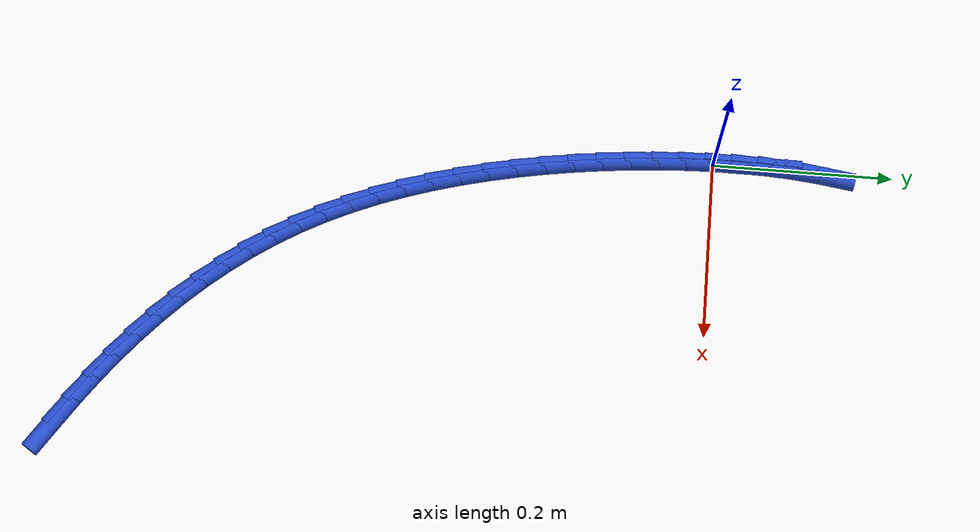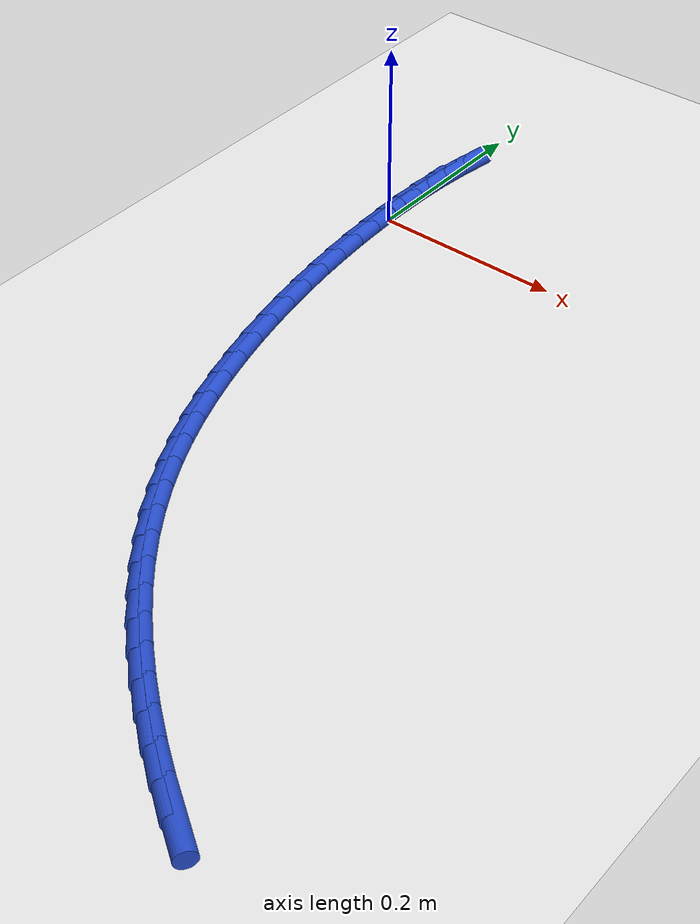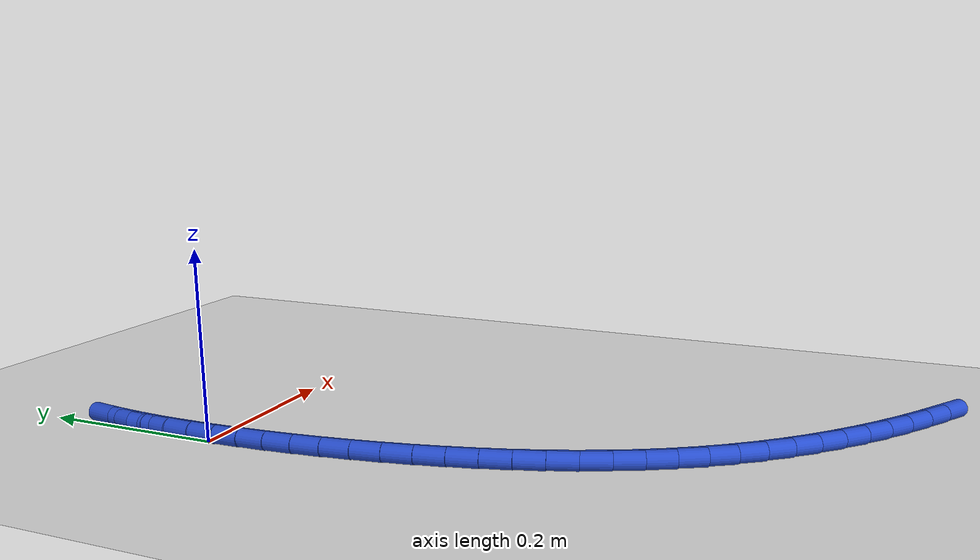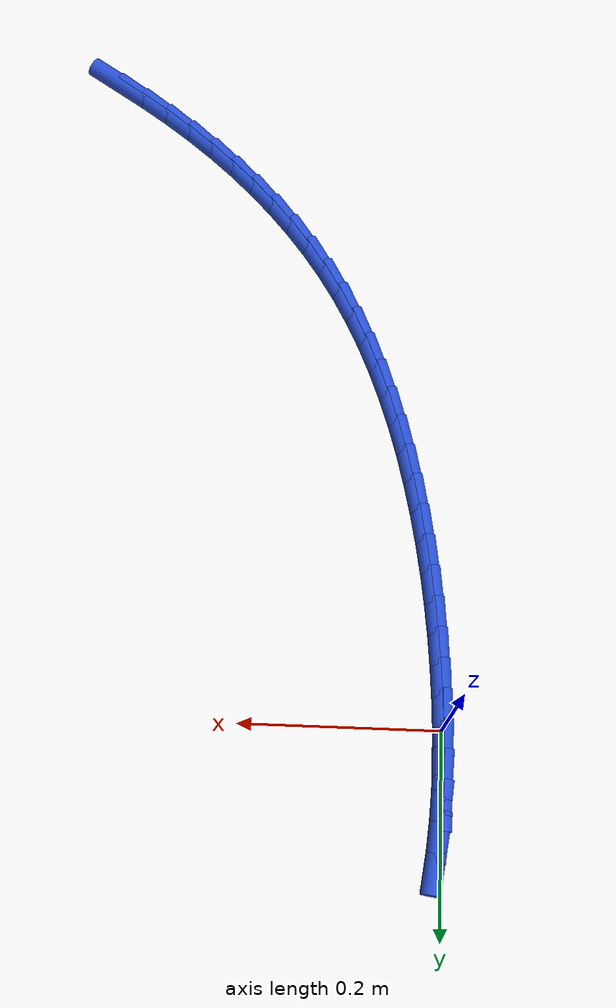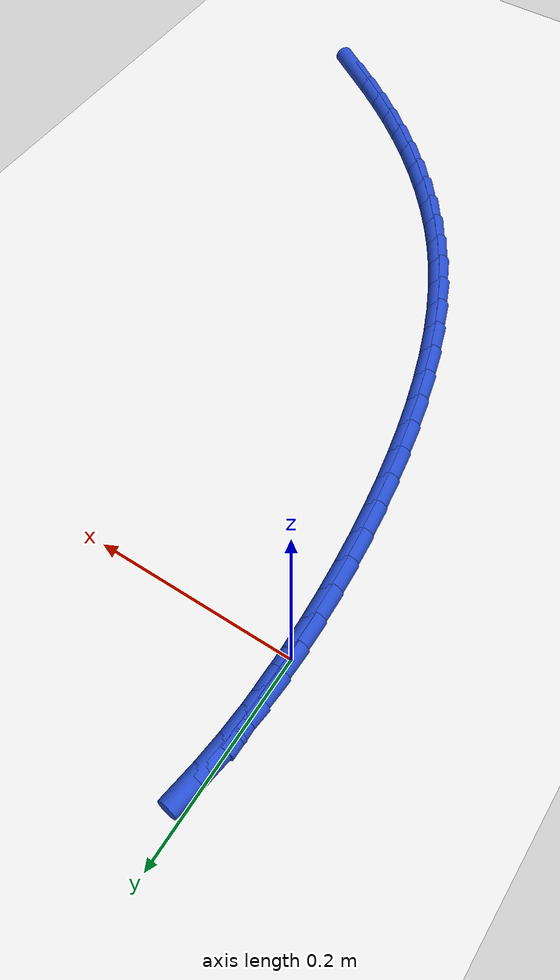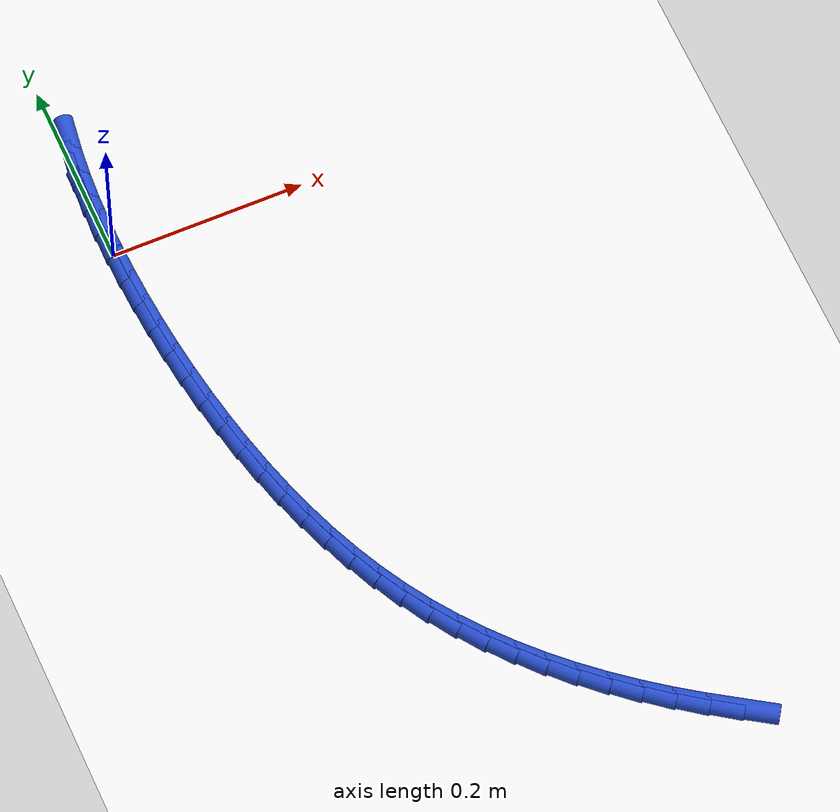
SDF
<sdf version="1.6">
 <world name="default">
  <model name="ground_plane">
   <static>1</static>
   <link name="link">
    <collision name="collision">
     <geometry><plane><normal>0 0 1</normal><size>100 100</size></plane></geometry>
     <surface><friction><ode><mu>100</mu><mu2>50</mu2></ode></friction></surface>
    </collision>
    <visual name="visual">
     <cast_shadows>0</cast_shadows>
     <geometry><plane><normal>0 0 1</normal><size>100 100</size></plane></geometry>
     <material>
      <script><uri>file://media/materials/scripts/gazebo.material</uri><name>Gazebo/WhiteGlow</name></script>
     </material>
    </visual>
   </link>
  </model>
  <model name="line">
   <link name="link_0">
    <pose>-4.119968255444917e-18 -2.0816681711721685e-17 0.01 0 1.57 -1.562052817737333</pose>
    <collision name="collision">
     <geometry><cylinder><radius>0.01</radius><length>0.08</length></cylinder></geometry>
    </collision>
    <visual name="visual">
     <material>
      <script><name>Gazebo/Blue</name><uri>file://media/materials/scripts/gazebo.material</uri></script>
     </material>
     <geometry><cylinder><radius>0.01</radius><length>0.08</length></cylinder></geometry>
    </visual>
   </link>
   <link name="link_1">
    <pose>-0.00025625882855209964 0.02930771805601609 0.01 0 1.57 1.5480821553851039</pose>
    <collision name="collision">
     <geometry><cylinder><radius>0.01</radius><length>0.08</length></cylinder></geometry>
    </collision>
    <visual name="visual">
     <material>
      <script><name>Gazebo/Blue</name><uri>file://media/materials/scripts/gazebo.material</uri></script>
     </material>
     <geometry><cylinder><radius>0.01</radius><length>0.08</length></cylinder></geometry>
    </visual>
   </link>
   <link name="link_2">
    <pose>0.0004032373809765437 0.05833729500970832 0.01 0 1.57 1.5113289155813903</pose>
    <collision name="collision">
     <geometry><cylinder><radius>0.01</radius><length>0.08</length></cylinder></geometry>
    </collision>
    <visual name="visual">
     <material>
      <script><name>Gazebo/Blue</name><uri>file://media/materials/scripts/gazebo.material</uri></script>
     </material>
     <geometry><cylinder><radius>0.01</radius><length>0.08</length></cylinder></geometry>
    </visual>
   </link>
   <link name="link_3">
    <pose>0.0021424498949278595 0.08754929242037619 0.01 0 1.57 1.4712141610465388</pose>
    <collision name="collision">
     <geometry><cylinder><radius>0.01</radius><length>0.08</length></cylinder></geometry>
    </collision>
    <visual name="visual">
     <material>
      <script><name>Gazebo/Blue</name><uri>file://media/materials/scripts/gazebo.material</uri></script>
     </material>
     <geometry><cylinder><radius>0.01</radius><length>0.08</length></cylinder></geometry>
    </visual>
   </link>
   <link name="link_4">
    <pose>0.005125339979643774 0.11740427184731916 0.01 0 1.57 1.4299160984193249</pose>
    <collision name="collision">
     <geometry><cylinder><radius>0.01</radius><length>0.08</length></cylinder></geometry>
    </collision>
    <visual name="visual">
     <material>
      <script><name>Gazebo/Blue</name><uri>file://media/materials/scripts/gazebo.material</uri></script>
     </material>
     <geometry><cylinder><radius>0.01</radius><length>0.08</length></cylinder></geometry>
    </visual>
   </link>
   <link name="link_244">
    <pose>0.35213860571533345 -0.6923645273068532 0.01 0 1.57 -0.5785103591377788</pose>
    <collision name="collision">
     <geometry><cylinder><radius>0.01</radius><length>0.08</length></cylinder></geometry>
    </collision>
    <visual name="visual">
     <material>
      <script><name>Gazebo/Blue</name><uri>file://media/materials/scripts/gazebo.material</uri></script>
     </material>
     <geometry><cylinder><radius>0.01</radius><length>0.08</length></cylinder></geometry>
    </visual>
   </link>
   <link name="link_245">
    <pose>0.32452816041802607 -0.67433376179134 0.01 0 1.57 -0.6116766444370919</pose>
    <collision name="collision">
     <geometry><cylinder><radius>0.01</radius><length>0.08</length></cylinder></geometry>
    </collision>
    <visual name="visual">
     <material>
      <script><name>Gazebo/Blue</name><uri>file://media/materials/scripts/gazebo.material</uri></script>
     </material>
     <geometry><cylinder><radius>0.01</radius><length>0.08</length></cylinder></geometry>
    </visual>
   </link>
   <link name="link_246">
    <pose>0.2979065844626225 -0.655660923683847 0.01 0 1.57 -0.6472858655691797</pose>
    <collision name="collision">
     <geometry><cylinder><radius>0.01</radius><length>0.08</length></cylinder></geometry>
    </collision>
    <visual name="visual">
     <material>
      <script><name>Gazebo/Blue</name><uri>file://media/materials/scripts/gazebo.material</uri></script>
     </material>
     <geometry><cylinder><radius>0.01</radius><length>0.08</length></cylinder></geometry>
    </visual>
   </link>
   <link name="link_247">
    <pose>0.27231046668513215 -0.636312036421596 0.01 0 1.57 -0.6853773964990545</pose>
    <collision name="collision">
     <geometry><cylinder><radius>0.01</radius><length>0.08</length></cylinder></geometry>
    </collision>
    <visual name="visual">
     <material>
      <script><name>Gazebo/Blue</name><uri>file://media/materials/scripts/gazebo.material</uri></script>
     </material>
     <geometry><cylinder><radius>0.01</radius><length>0.08</length></cylinder></geometry>
    </visual>
   </link>
   <link name="link_248">
    <pose>0.24777639592156647 -0.6162531234418113 0.01 0 1.57 -0.7259606202073509</pose>
    <collision name="collision">
     <geometry><cylinder><radius>0.01</radius><length>0.08</length></cylinder></geometry>
    </collision>
    <visual name="visual">
     <material>
      <script><name>Gazebo/Blue</name><uri>file://media/materials/scripts/gazebo.material</uri></script>
     </material>
     <geometry><cylinder><radius>0.01</radius><length>0.08</length></cylinder></geometry>
    </visual>
   </link>
   <link name="link_249">
    <pose>0.22434096100793433 -0.5954502081817143 0.01 0 1.57 -0.769007242598822</pose>
    <collision name="collision">
     <geometry><cylinder><radius>0.01</radius><length>0.08</length></cylinder></geometry>
    </collision>
    <visual name="visual">
     <material>
      <script><name>Gazebo/Blue</name><uri>file://media/materials/scripts/gazebo.material</uri></script>
     </material>
     <geometry><cylinder><radius>0.01</radius><length>0.08</length></cylinder></geometry>
    </visual>
   </link>
   <link name="link_250">
    <pose>0.20204075078024716 -0.573869314078529 0.01 0 1.57 -0.8144436828011368</pose>
    <collision name="collision">
     <geometry><cylinder><radius>0.01</radius><length>0.08</length></cylinder></geometry>
    </collision>
    <visual name="visual">
     <material>
      <script><name>Gazebo/Blue</name><uri>file://media/materials/scripts/gazebo.material</uri></script>
     </material>
     <geometry><cylinder><radius>0.01</radius><length>0.08</length></cylinder></geometry>
    </visual>
   </link>
   <link name="link_251">
    <pose>0.18091235407451373 -0.551476464569477 0.01 0 1.57 -0.8621442864571782</pose>
    <collision name="collision">
     <geometry><cylinder><radius>0.01</radius><length>0.08</length></cylinder></geometry>
    </collision>
    <visual name="visual">
     <material>
      <script><name>Gazebo/Blue</name><uri>file://media/materials/scripts/gazebo.material</uri></script>
     </material>
     <geometry><cylinder><radius>0.01</radius><length>0.08</length></cylinder></geometry>
    </visual>
   </link>
   <link name="link_252">
    <pose>0.16099235972674536 -0.5282376830917821 0.01 0 1.57 -0.9119262896213699</pose>
    <collision name="collision">
     <geometry><cylinder><radius>0.01</radius><length>0.08</length></cylinder></geometry>
    </collision>
    <visual name="visual">
     <material>
      <script><name>Gazebo/Blue</name><uri>file://media/materials/scripts/gazebo.material</uri></script>
     </material>
     <geometry><cylinder><radius>0.01</radius><length>0.08</length></cylinder></geometry>
    </visual>
   </link>
   <link name="link_253">
    <pose>0.14231735657295105 -0.504118993082666 0.01 0 1.57 -0.9635475454551972</pose>
    <collision name="collision">
     <geometry><cylinder><radius>0.01</radius><length>0.08</length></cylinder></geometry>
    </collision>
    <visual name="visual">
     <material>
      <script><name>Gazebo/Blue</name><uri>file://media/materials/scripts/gazebo.material</uri></script>
     </material>
     <geometry><cylinder><radius>0.01</radius><length>0.08</length></cylinder></geometry>
    </visual>
   </link>
   <link name="link_254">
    <pose>0.12492393344914199 -0.47908641797935253 0.01 0 1.57 -1.0167079474675498</pose>
    <collision name="collision">
     <geometry><cylinder><radius>0.01</radius><length>0.08</length></cylinder></geometry>
    </collision>
    <visual name="visual">
     <material>
      <script><name>Gazebo/Blue</name><uri>file://media/materials/scripts/gazebo.material</uri></script>
     </material>
     <geometry><cylinder><radius>0.01</radius><length>0.08</length></cylinder></geometry>
    </visual>
   </link>
   <link name="link_255">
    <pose>0.10884867919132721 -0.4531059812190631 0.01 0 1.57 -1.0705809651299938</pose>
    <collision name="collision">
     <geometry><cylinder><radius>0.01</radius><length>0.08</length></cylinder></geometry>
    </collision>
    <visual name="visual">
     <material>
      <script><name>Gazebo/Blue</name><uri>file://media/materials/scripts/gazebo.material</uri></script>
     </material>
     <geometry><cylinder><radius>0.01</radius><length>0.08</length></cylinder></geometry>
    </visual>
   </link>
   <link name="link_256">
    <pose>0.09411853158016487 -0.42615642315793156 0.01 0 1.57 -1.1218119510248232</pose>
    <collision name="collision">
     <geometry><cylinder><radius>0.01</radius><length>0.08</length></cylinder></geometry>
    </collision>
    <visual name="visual">
     <material>
      <script><name>Gazebo/Blue</name><uri>file://media/materials/scripts/gazebo.material</uri></script>
     </material>
     <geometry><cylinder><radius>0.01</radius><length>0.08</length></cylinder></geometry>
    </visual>
   </link>
   <link name="link_257">
    <pose>0.08069715371368581 -0.3982998593870802 0.01 0 1.57 -1.169203715125118</pose>
    <collision name="collision">
     <geometry><cylinder><radius>0.01</radius><length>0.08</length></cylinder></geometry>
    </collision>
    <visual name="visual">
     <material>
      <script><name>Gazebo/Blue</name><uri>file://media/materials/scripts/gazebo.material</uri></script>
     </material>
     <geometry><cylinder><radius>0.01</radius><length>0.08</length></cylinder></geometry>
    </visual>
   </link>
   <link name="link_258">
    <pose>0.06852271937644339 -0.36963199203513425 0.01 0 1.57 -1.2129025275290444</pose>
    <collision name="collision">
     <geometry><cylinder><radius>0.01</radius><length>0.08</length></cylinder></geometry>
    </collision>
    <visual name="visual">
     <material>
      <script><name>Gazebo/Blue</name><uri>file://media/materials/scripts/gazebo.material</uri></script>
     </material>
     <geometry><cylinder><radius>0.01</radius><length>0.08</length></cylinder></geometry>
    </visual>
   </link>
   <link name="link_259">
    <pose>0.05753333225401431 -0.3402486155981341 0.01 0 1.57 -1.2530946143318904</pose>
    <collision name="collision">
     <geometry><cylinder><radius>0.01</radius><length>0.08</length></cylinder></geometry>
    </collision>
    <visual name="visual">
     <material>
      <script><name>Gazebo/Blue</name><uri>file://media/materials/scripts/gazebo.material</uri></script>
     </material>
     <geometry><cylinder><radius>0.01</radius><length>0.08</length></cylinder></geometry>
    </visual>
   </link>
   <link name="link_260">
    <pose>0.04766709603197391 -0.3102455245721167 0.01 0 1.57 -1.2899854252409548</pose>
    <collision name="collision">
     <geometry><cylinder><radius>0.01</radius><length>0.08</length></cylinder></geometry>
    </collision>
    <visual name="visual">
     <material>
      <script><name>Gazebo/Blue</name><uri>file://media/materials/scripts/gazebo.material</uri></script>
     </material>
     <geometry><cylinder><radius>0.01</radius><length>0.08</length></cylinder></geometry>
    </visual>
   </link>
   <link name="link_261">
    <pose>0.03886211439589882 -0.2797185134531229 0.01 0 1.57 -1.3237864841992149</pose>
    <collision name="collision">
     <geometry><cylinder><radius>0.01</radius><length>0.08</length></cylinder></geometry>
    </collision>
    <visual name="visual">
     <material>
      <script><name>Gazebo/Blue</name><uri>file://media/materials/scripts/gazebo.material</uri></script>
     </material>
     <geometry><cylinder><radius>0.01</radius><length>0.08</length></cylinder></geometry>
    </visual>
   </link>
   <link name="link_262">
    <pose>0.031056491031364476 -0.24876337673718937 0.01 0 1.57 -1.354718060745158</pose>
    <collision name="collision">
     <geometry><cylinder><radius>0.01</radius><length>0.08</length></cylinder></geometry>
    </collision>
    <visual name="visual">
     <material>
      <script><name>Gazebo/Blue</name><uri>file://media/materials/scripts/gazebo.material</uri></script>
     </material>
     <geometry><cylinder><radius>0.01</radius><length>0.08</length></cylinder></geometry>
    </visual>
   </link>
   <link name="link_263">
    <pose>0.024188840646080196 -0.21747641197665446 0.01 0 1.57 -1.383423358809018</pose>
    <collision name="collision">
     <geometry><cylinder><radius>0.01</radius><length>0.08</length></cylinder></geometry>
    </collision>
    <visual name="visual">
     <material>
      <script><name>Gazebo/Blue</name><uri>file://media/materials/scripts/gazebo.material</uri></script>
     </material>
     <geometry><cylinder><radius>0.01</radius><length>0.08</length></cylinder></geometry>
    </visual>
   </link>
   <link name="link_264">
    <pose>0.018215595281452408 -0.1859714563201769 0.01 0 1.57 -1.4107092885344799</pose>
    <collision name="collision">
     <geometry><cylinder><radius>0.01</radius><length>0.08</length></cylinder></geometry>
    </collision>
    <visual name="visual">
     <material>
      <script><name>Gazebo/Blue</name><uri>file://media/materials/scripts/gazebo.material</uri></script>
     </material>
     <geometry><cylinder><radius>0.01</radius><length>0.08</length></cylinder></geometry>
    </visual>
   </link>
   <link name="link_265">
    <pose>0.01311521232811076 -0.15438402893353864 0.01 0 1.57 -1.4368960549171559</pose>
    <collision name="collision">
     <geometry><cylinder><radius>0.01</radius><length>0.08</length></cylinder></geometry>
    </collision>
    <visual name="visual">
     <material>
      <script><name>Gazebo/Blue</name><uri>file://media/materials/scripts/gazebo.material</uri></script>
     </material>
     <geometry><cylinder><radius>0.01</radius><length>0.08</length></cylinder></geometry>
    </visual>
   </link>
   <link name="link_266">
    <pose>0.008867513679463753 -0.12285099221536866 0.01 0 1.57 -1.4622584374752756</pose>
    <collision name="collision">
     <geometry><cylinder><radius>0.01</radius><length>0.08</length></cylinder></geometry>
    </collision>
    <visual name="visual">
     <material>
      <script><name>Gazebo/Blue</name><uri>file://media/materials/scripts/gazebo.material</uri></script>
     </material>
     <geometry><cylinder><radius>0.01</radius><length>0.08</length></cylinder></geometry>
    </visual>
   </link>
   <link name="link_267">
    <pose>0.005452321228920455 -0.09150920856429962 0.01 0 1.57 -1.4870661845523783</pose>
    <collision name="collision">
     <geometry><cylinder><radius>0.01</radius><length>0.08</length></cylinder></geometry>
    </collision>
    <visual name="visual">
     <material>
      <script><name>Gazebo/Blue</name><uri>file://media/materials/scripts/gazebo.material</uri></script>
     </material>
     <geometry><cylinder><radius>0.01</radius><length>0.08</length></cylinder></geometry>
    </visual>
   </link>
   <link name="link_268">
    <pose>0.002849456869889526 -0.06049554037896141 0.01 0 1.57 -1.5115925347855081</pose>
    <collision name="collision">
     <geometry><cylinder><radius>0.01</radius><length>0.08</length></cylinder></geometry>
    </collision>
    <visual name="visual">
     <material>
      <script><name>Gazebo/Blue</name><uri>file://media/materials/scripts/gazebo.material</uri></script>
     </material>
     <geometry><cylinder><radius>0.01</radius><length>0.08</length></cylinder></geometry>
    </visual>
   </link>
   <link name="link_269">
    <pose>0.0010387424957797344 -0.02994685005798399 0.01 0 1.57 -1.5361240252816437</pose>
    <collision name="collision">
     <geometry><cylinder><radius>0.01</radius><length>0.08</length></cylinder></geometry>
    </collision>
    <visual name="visual">
     <material>
      <script><name>Gazebo/Blue</name><uri>file://media/materials/scripts/gazebo.material</uri></script>
     </material>
     <geometry><cylinder><radius>0.01</radius><length>0.08</length></cylinder></geometry>
    </visual>
   </link>
   <link name="link_270">
    <pose>-6.7220534694101275e-18 1.3877787807814457e-17 0.01 0 1.57 -1.560972372918583</pose>
    <collision name="collision">
     <geometry><cylinder><radius>0.01</radius><length>0.08</length></cylinder></geometry>
    </collision>
    <visual name="visual">
     <material>
      <script><name>Gazebo/Blue</name><uri>file://media/materials/scripts/gazebo.material</uri></script>
     </material>
     <geometry><cylinder><radius>0.01</radius><length>0.08</length></cylinder></geometry>
    </visual>
   </link>
   <link name="link_271">
    <pose>-0.00028694872404095564 0.02920814739636154 0.01 0 1.57 1.5551030718949095</pose>
    <collision name="collision">
     <geometry><cylinder><radius>0.01</radius><length>0.08</length></cylinder></geometry>
    </collision>
    <visual name="visual">
     <material>
      <script><name>Gazebo/Blue</name><uri>file://media/materials/scripts/gazebo.material</uri></script>
     </material>
     <geometry><cylinder><radius>0.01</radius><length>0.08</length></cylinder></geometry>
    </visual>
   </link>
   <link name="link_272">
    <pose>0.00015771821706573718 0.05754072973246886 0.01 0 1.57 1.5680553497022842</pose>
    <collision name="collision">
     <geometry><cylinder><radius>0.01</radius><length>0.08</length></cylinder></geometry>
    </collision>
    <visual name="visual">
     <material>
      <script><name>Gazebo/Blue</name><uri>file://media/materials/scripts/gazebo.material</uri></script>
     </material>
     <geometry><cylinder><radius>0.01</radius><length>0.08</length></cylinder></geometry>
    </visual>
   </link>
  </model>
 </world>
</sdf>
